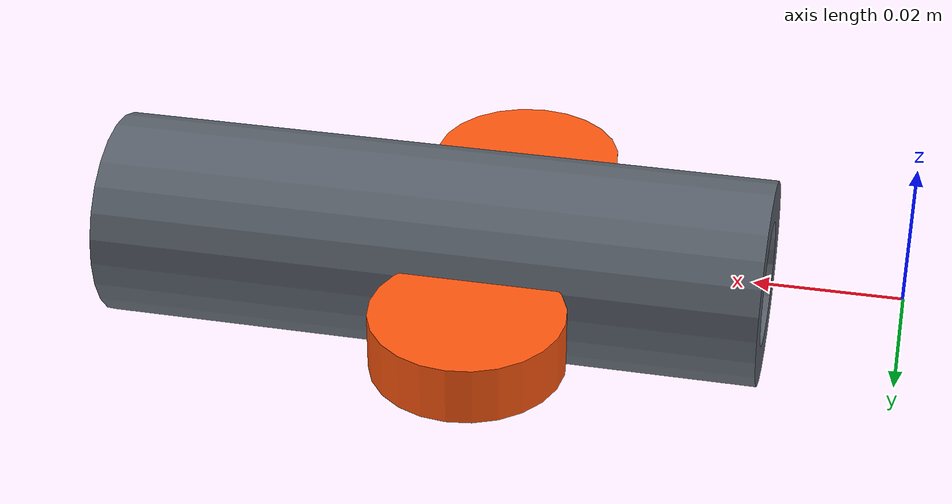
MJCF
<?xml version="1.0"?>
<mujoco model="barrel_unit">
  <compiler angle="degree" autolimits="true"/>

  <asset>
    <!-- 中空圆柱枪管 mesh：轴线沿局部 X，内半径 0.0085 m（直径 17 mm），外半径 0.014 m。
         后端 x=0.018 m，前端 x=0.109 m，是上一版 0.182 m 长度的一半。 -->
    <mesh name="barrel_tube_mesh"
          vertex="0.018000 0.014000 0.000000 0.018000 0.013523 0.003623 0.018000 0.012124 0.007000 0.018000 0.009899 0.009899 0.018000 0.007000 0.012124 0.018000 0.003623 0.013523 0.018000 0.000000 0.014000 0.018000 -0.003623 0.013523 0.018000 -0.007000 0.012124 0.018000 -0.009899 0.009899 0.018000 -0.012124 0.007000 0.018000 -0.013523 0.003623 0.018000 -0.014000 0.000000 0.018000 -0.013523 -0.003623 0.018000 -0.012124 -0.007000 0.018000 -0.009899 -0.009899 0.018000 -0.007000 -0.012124 0.018000 -0.003623 -0.013523 0.018000 -0.000000 -0.014000 0.018000 0.003623 -0.013523 0.018000 0.007000 -0.012124 0.018000 0.009899 -0.009899 0.018000 0.012124 -0.007000 0.018000 0.013523 -0.003623 0.018000 0.008500 0.000000 0.018000 0.008210 0.002200 0.018000 0.007361 0.004250 0.018000 0.006010 0.006010 0.018000 0.004250 0.007361 0.018000 0.002200 0.008210 0.018000 0.000000 0.008500 0.018000 -0.002200 0.008210 0.018000 -0.004250 0.007361 0.018000 -0.006010 0.006010 0.018000 -0.007361 0.004250 0.018000 -0.008210 0.002200 0.018000 -0.008500 0.000000 0.018000 -0.008210 -0.002200 0.018000 -0.007361 -0.004250 0.018000 -0.006010 -0.006010 0.018000 -0.004250 -0.007361 0.018000 -0.002200 -0.008210 0.018000 -0.000000 -0.008500 0.018000 0.002200 -0.008210 0.018000 0.004250 -0.007361 0.018000 0.006010 -0.006010 0.018000 0.007361 -0.004250 0.018000 0.008210 -0.002200 0.109000 0.014000 0.000000 0.109000 0.013523 0.003623 0.109000 0.012124 0.007000 0.109000 0.009899 0.009899 0.109000 0.007000 0.012124 0.109000 0.003623 0.013523 0.109000 0.000000 0.014000 0.109000 -0.003623 0.013523 0.109000 -0.007000 0.012124 0.109000 -0.009899 0.009899 0.109000 -0.012124 0.007000 0.109000 -0.013523 0.003623 0.109000 -0.014000 0.000000 0.109000 -0.013523 -0.003623 0.109000 -0.012124 -0.007000 0.109000 -0.009899 -0.009899 0.109000 -0.007000 -0.012124 0.109000 -0.003623 -0.013523 0.109000 -0.000000 -0.014000 0.109000 0.003623 -0.013523 0.109000 0.007000 -0.012124 0.109000 0.009899 -0.009899 0.109000 0.012124 -0.007000 0.109000 0.013523 -0.003623 0.109000 0.008500 0.000000 0.109000 0.008210 0.002200 0.109000 0.007361 0.004250 0.109000 0.006010 0.006010 0.109000 0.004250 0.007361 0.109000 0.002200 0.008210 0.109000 0.000000 0.008500 0.109000 -0.002200 0.008210 0.109000 -0.004250 0.007361 0.109000 -0.006010 0.006010 0.109000 -0.007361 0.004250 0.109000 -0.008210 0.002200 0.109000 -0.008500 0.000000 0.109000 -0.008210 -0.002200 0.109000 -0.007361 -0.004250 0.109000 -0.006010 -0.006010 0.109000 -0.004250 -0.007361 0.109000 -0.002200 -0.008210 0.109000 -0.000000 -0.008500 0.109000 0.002200 -0.008210 0.109000 0.004250 -0.007361 0.109000 0.006010 -0.006010 0.109000 0.007361 -0.004250 0.109000 0.008210 -0.002200"
          face="0 48 49 0 49 1 24 25 73 24 73 72 0 1 25 0 25 24 48 72 73 48 73 49 1 49 50 1 50 2 25 26 74 25 74 73 1 2 26 1 26 25 49 73 74 49 74 50 2 50 51 2 51 3 26 27 75 26 75 74 2 3 27 2 27 26 50 74 75 50 75 51 3 51 52 3 52 4 27 28 76 27 76 75 3 4 28 3 28 27 51 75 76 51 76 52 4 52 53 4 53 5 28 29 77 28 77 76 4 5 29 4 29 28 52 76 77 52 77 53 5 53 54 5 54 6 29 30 78 29 78 77 5 6 30 5 30 29 53 77 78 53 78 54 6 54 55 6 55 7 30 31 79 30 79 78 6 7 31 6 31 30 54 78 79 54 79 55 7 55 56 7 56 8 31 32 80 31 80 79 7 8 32 7 32 31 55 79 80 55 80 56 8 56 57 8 57 9 32 33 81 32 81 80 8 9 33 8 33 32 56 80 81 56 81 57 9 57 58 9 58 10 33 34 82 33 82 81 9 10 34 9 34 33 57 81 82 57 82 58 10 58 59 10 59 11 34 35 83 34 83 82 10 11 35 10 35 34 58 82 83 58 83 59 11 59 60 11 60 12 35 36 84 35 84 83 11 12 36 11 36 35 59 83 84 59 84 60 12 60 61 12 61 13 36 37 85 36 85 84 12 13 37 12 37 36 60 84 85 60 85 61 13 61 62 13 62 14 37 38 86 37 86 85 13 14 38 13 38 37 61 85 86 61 86 62 14 62 63 14 63 15 38 39 87 38 87 86 14 15 39 14 39 38 62 86 87 62 87 63 15 63 64 15 64 16 39 40 88 39 88 87 15 16 40 15 40 39 63 87 88 63 88 64 16 64 65 16 65 17 40 41 89 40 89 88 16 17 41 16 41 40 64 88 89 64 89 65 17 65 66 17 66 18 41 42 90 41 90 89 17 18 42 17 42 41 65 89 90 65 90 66 18 66 67 18 67 19 42 43 91 42 91 90 18 19 43 18 43 42 66 90 91 66 91 67 19 67 68 19 68 20 43 44 92 43 92 91 19 20 44 19 44 43 67 91 92 67 92 68 20 68 69 20 69 21 44 45 93 44 93 92 20 21 45 20 45 44 68 92 93 68 93 69 21 69 70 21 70 22 45 46 94 45 94 93 21 22 46 21 46 45 69 93 94 69 94 70 22 70 71 22 71 23 46 47 95 46 95 94 22 23 47 22 47 46 70 94 95 70 95 71 23 71 48 23 48 0 47 24 72 47 72 95 23 0 24 23 24 47 71 95 72 71 72 48"/>
  </asset>

  <default>
    <!-- 枪管管体：一个真正的中空圆柱 mesh，不再用杆子围出通道。
         mesh 碰撞在 MuJoCo 中会按凸包处理；这里作为外观和惯量模型，碰撞用下方独立内壁代理。 -->
    <default class="barrel_tube_geom">
      <geom type="mesh" mesh="barrel_tube_mesh" mass="0.04" rgba="0.36 0.39 0.43 1" contype="0" conaffinity="0"/>
    </default>

    <!-- 摩擦轮关节：圆柱轴线和关节轴都沿局部 Z，无角度限位。
         与底盘 M3508 P19 配置一致：转子与减速箱折算惯量约 0.001 kg·m²。
         电机力矩由整机 actuator 驱动，左右轮反向旋转以沿 +X 送弹。 -->
    <default class="friction_wheel_joint">
      <joint type="hinge" axis="0 0 1" limited="false" damping="0.001" armature="0.001"/>
    </default>

    <!-- 摩擦轮：直径 26 mm，厚 8 mm。
         两轮中心距枪管轴 20.5 mm，内侧轮面到轴线约 7.5 mm；
         弹丸半径 8.4 mm，因此每侧约 0.9 mm 预压，用软接触模拟橡胶弹性。 -->
    <!-- 0.1 ms 物理步长下的接触时间常数 0.2 ms，用于高速夹弹接触。 -->
    <default class="friction_wheel_geom">
      <geom type="cylinder" size="0.013 0.004" mass="0.006" rgba="1.00 0.34 0.06 1"
            friction="2.0 0.04 0.002" solref="0.0002 1" solimp="0.80 0.95 0.002"
            contype="1" conaffinity="1"/>
    </default>

  </default>

  <worldbody>
    <body name="barrel_link">
      <!-- 枪管根部从 pitch 轴前方 0.018 m 开始，插进 pitch 电机圆柱里一点点。
           内孔直径 17 mm，枪管沿局部 +X 方向伸出。 -->
      <geom name="barrel_tube" class="barrel_tube_geom"/>

      <!-- 摩擦轮嵌入枪管侧面，轮面伸入 17 mm 内孔，夹住弹丸后沿 +X 方向加速。 -->
      <body name="friction_wheel_l_link" pos="0.055 0.0205 0">
        <joint name="friction_wheel_l_joint" class="friction_wheel_joint"/>
        <geom name="friction_wheel_l" class="friction_wheel_geom"/>
      </body>
      <body name="friction_wheel_r_link" pos="0.055 -0.0205 0">
        <joint name="friction_wheel_r_joint" class="friction_wheel_joint"/>
        <geom name="friction_wheel_r" class="friction_wheel_geom"/>
      </body>

      <!-- 非接触装填位置标记，无质量；实际弹丸在 worldbody 下独立自由运动。 -->
      <site name="projectile_feed" pos="0.050 0 0" size="0.002" rgba="0.72 0.95 0.12 1"/>
      <!-- 单独的无质量内壁碰撞代理，净通道 17 mm；左右壁避开摩擦轮入口。 -->
      <geom name="bore_top" type="box" pos="0.0635 0 0.01125" size="0.0455 0.0085 0.00275" mass="0" rgba="0.36 0.39 0.43 0"/>
      <geom name="bore_bottom" type="box" pos="0.0635 0 -0.01125" size="0.0455 0.0085 0.00275" mass="0" rgba="0.36 0.39 0.43 0"/>
      <geom name="bore_left" type="box" pos="0.089 0.01125 0" size="0.020 0.00275 0.014" mass="0" rgba="0.36 0.39 0.43 0"/>
      <geom name="bore_right" type="box" pos="0.089 -0.01125 0" size="0.020 0.00275 0.014" mass="0" rgba="0.36 0.39 0.43 0"/>
    </body>
  </worldbody>
</mujoco>
